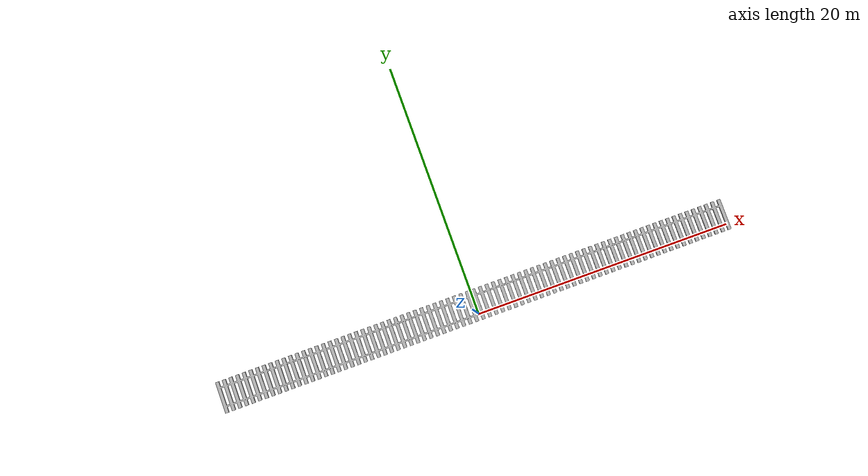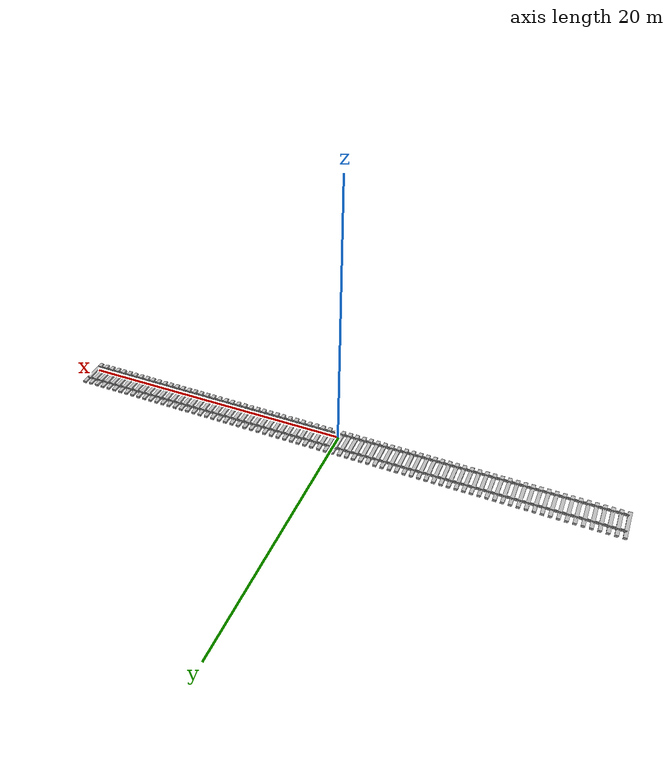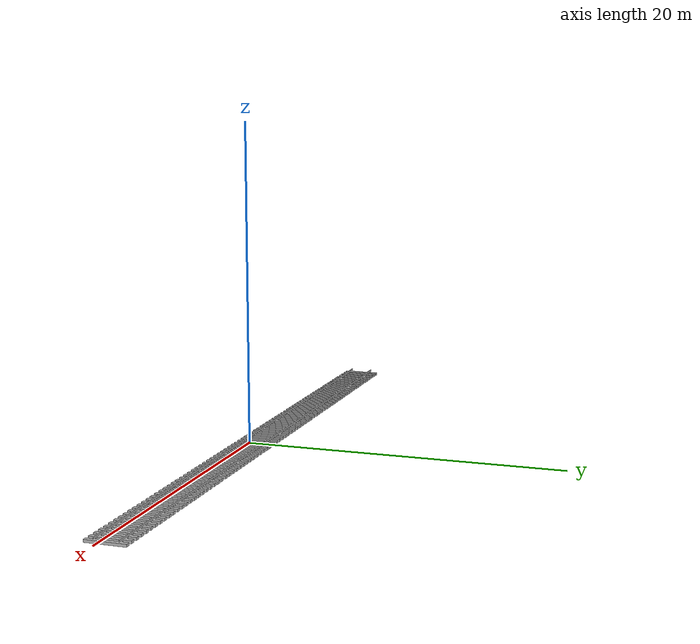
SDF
<?xml version="1.0" ?>
<sdf version="1.5">
  <model name="RailStraight">
        <static>true</static>
    <link name="link">
    <gravity>0</gravity>
      <collision name="collision">
        <geometry>
          <mesh>
            <scale>1 1 1</scale>
            <uri>model://rail_straight/meshes/rails_straight.dae</uri>
          </mesh>
        </geometry>
      </collision>
      <visual name="visual">
        <geometry>
          <mesh>
            <scale>1 1 1</scale>
            <uri>model://rail_straight/meshes/rails_straight.dae</uri>
          </mesh>
        </geometry>
      </visual>
    </link>
  </model>
</sdf>
